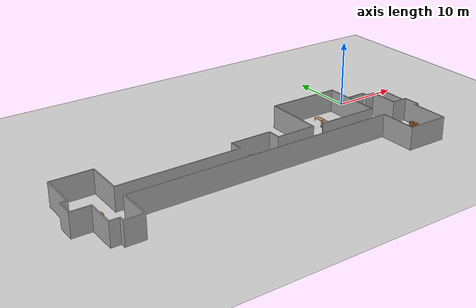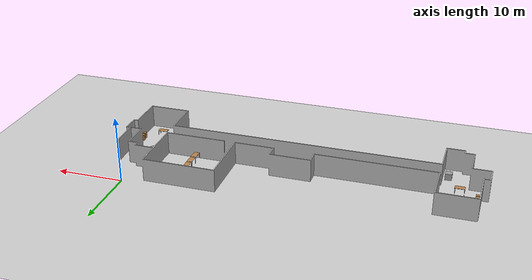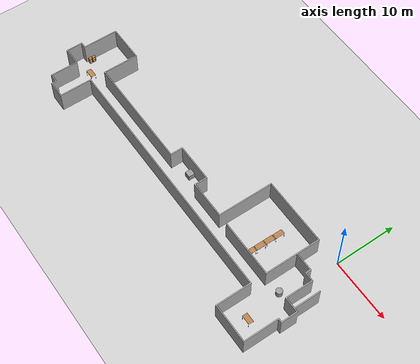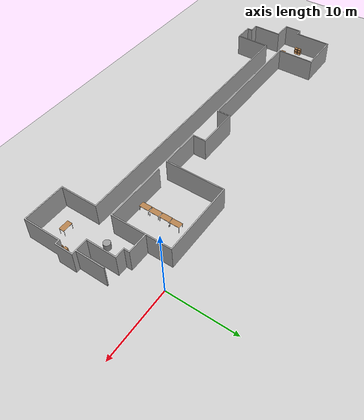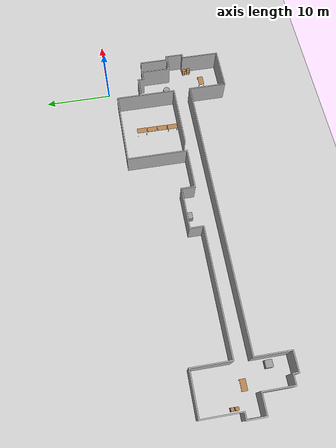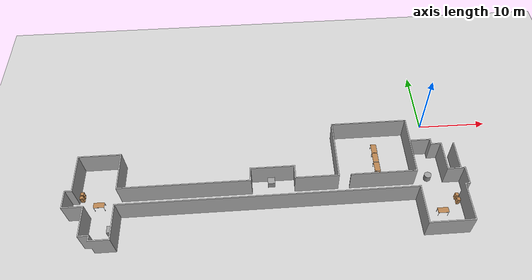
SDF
<sdf version="1.7">
 <world name="default">
  <light name="sun" type="directional">
   <pose>0 0 10 0 -0 0</pose>
   <diffuse>0.8 0.8 0.8 1</diffuse>
   <specular>0.2 0.2 0.2 1</specular>
   <attenuation>
    <range>1000</range>
    <constant>0.9</constant>
    <linear>0.01</linear>
    <quadratic>0.001</quadratic>
   </attenuation>
   <direction>-0.5 0.1 -0.9</direction>
   <spot><inner_angle>0</inner_angle><outer_angle>0</outer_angle><falloff>0</falloff></spot>
  </light>
  <model name="ground_plane">
   <pose>-10 0 0 0 -0 0</pose>
   <static>1</static>
   <link name="link">
    <collision name="collision">
     <geometry><plane><normal>0 0 1</normal><size>100 100</size></plane></geometry>
     <surface>
      <contact><collide_bitmask>65535</collide_bitmask></contact>
      <friction><ode><mu>100</mu><mu2>50</mu2></ode></friction>
     </surface>
    </collision>
    <visual name="visual">
     <cast_shadows>0</cast_shadows>
     <geometry><plane><normal>0 0 1</normal><size>100 100</size></plane></geometry>
     <material>
      <script><uri>file://media/materials/scripts/gazebo.material</uri><name>Gazebo/Grey</name></script>
     </material>
    </visual>
   </link>
  </model>
  <gravity>0 0 -9.8</gravity>
  <magnetic_field>6e-06 2.3e-05 -4.2e-05</magnetic_field>
  <atmosphere type="adiabatic"/>
  <physics type="ode">
   <max_step_size>0.001</max_step_size>
   <real_time_factor>1</real_time_factor>
   <real_time_update_rate>1000</real_time_update_rate>
  </physics>
  <scene><ambient>0.4 0.4 0.4 1</ambient><background>0.7 0.7 0.7 1</background><shadows>1</shadows></scene>
  <spherical_coordinates>
   <surface_model>EARTH_WGS84</surface_model>
   <latitude_deg>0</latitude_deg>
   <longitude_deg>0</longitude_deg>
   <elevation>0</elevation>
   <heading_deg>0</heading_deg>
  </spherical_coordinates>
  <model name="abcd">
   <static>1</static>
   <link name="link_utama">
    <collision name="collision">
     <geometry><mesh><uri>model://labc_1door/meshes/LABC_2Door.dae</uri><scale>1 1 1</scale></mesh></geometry>
    </collision>
    <visual name="visual">
     <geometry><mesh><uri>model://labc_1door/meshes/LABC_2Door.dae</uri><scale>1 1 1</scale></mesh></geometry>
    </visual>
   </link>
  </model>
  <model name="table">
   <static>1</static>
   <link name="link">
    <collision name="surface">
     <pose>0 0 1 0 -0 0</pose>
     <geometry><box><size>1.5 0.8 0.03</size></box></geometry>
     <surface><friction><ode><mu>0.6</mu><mu2>0.6</mu2></ode></friction></surface>
    </collision>
    <visual name="visual1">
     <pose>0 0 1 0 -0 0</pose>
     <geometry><box><size>1.5 0.8 0.03</size></box></geometry>
     <material>
      <script><uri>file://media/materials/scripts/gazebo.material</uri><name>Gazebo/Wood</name></script>
     </material>
    </visual>
    <collision name="front_left_leg">
     <pose>0.68 0.38 0.5 0 -0 0</pose>
     <geometry><cylinder><radius>0.02</radius><length>1</length></cylinder></geometry>
    </collision>
    <visual name="front_left_leg">
     <pose>0.68 0.38 0.5 0 -0 0</pose>
     <geometry><cylinder><radius>0.02</radius><length>1</length></cylinder></geometry>
     <material>
      <script><uri>file://media/materials/scripts/gazebo.material</uri><name>Gazebo/Grey</name></script>
     </material>
    </visual>
    <collision name="front_right_leg">
     <pose>0.68 -0.38 0.5 0 -0 0</pose>
     <geometry><cylinder><radius>0.02</radius><length>1</length></cylinder></geometry>
    </collision>
    <visual name="front_right_leg">
     <pose>0.68 -0.38 0.5 0 -0 0</pose>
     <geometry><cylinder><radius>0.02</radius><length>1</length></cylinder></geometry>
     <material>
      <script><uri>file://media/materials/scripts/gazebo.material</uri><name>Gazebo/Grey</name></script>
     </material>
    </visual>
    <collision name="back_right_leg">
     <pose>-0.68 -0.38 0.5 0 -0 0</pose>
     <geometry><cylinder><radius>0.02</radius><length>1</length></cylinder></geometry>
    </collision>
    <visual name="back_right_leg">
     <pose>-0.68 -0.38 0.5 0 -0 0</pose>
     <geometry><cylinder><radius>0.02</radius><length>1</length></cylinder></geometry>
     <material>
      <script><uri>file://media/materials/scripts/gazebo.material</uri><name>Gazebo/Grey</name></script>
     </material>
    </visual>
    <collision name="back_left_leg">
     <pose>-0.68 0.38 0.5 0 -0 0</pose>
     <geometry><cylinder><radius>0.02</radius><length>1</length></cylinder></geometry>
    </collision>
    <visual name="back_left_leg">
     <pose>-0.68 0.38 0.5 0 -0 0</pose>
     <geometry><cylinder><radius>0.02</radius><length>1</length></cylinder></geometry>
     <material>
      <script><uri>file://media/materials/scripts/gazebo.material</uri><name>Gazebo/Grey</name></script>
     </material>
    </visual>
   </link>
   <pose>-47.0916 -11.0579 0 0 -0 0</pose>
  </model>
  <model name="cabinet">
   <static>1</static>
   <link name="cabinet_bottom_plate">
    <inertial>
     <pose>0 0 -1 0 -0 0</pose>
     <inertia><ixx>2.05</ixx><ixy>0</ixy><ixz>0</ixz><iyy>2.05</iyy><iyz>0</iyz><izz>2.05</izz></inertia>
     <mass>25</mass>
    </inertial>
    <collision name="cabinet_bottom_plate_geom">
     <pose>0 0 0.01 0 -0 0</pose>
     <geometry><box><size>0.45 0.45 0.02</size></box></geometry>
    </collision>
    <visual name="cabinet_bottom_plate_geom_visual">
     <pose>0 0 0.01 0 -0 0</pose>
     <geometry><box><size>0.45 0.45 0.02</size></box></geometry>
     <material>
      <script><uri>file://media/materials/scripts/gazebo.material</uri><name>Gazebo/Wood</name></script>
     </material>
    </visual>
    <collision name="cabinet_bottom_plate_geom_cabinet_back_plate">
     <pose>0.235 0 0.51 0 -0 0</pose>
     <geometry><box><size>0.02 0.45 1.02</size></box></geometry>
    </collision>
    <visual name="cabinet_bottom_plate_geom_cabinet_back_plate_visual">
     <pose>0.235 0 0.51 0 -0 0</pose>
     <geometry><box><size>0.02 0.45 1.02</size></box></geometry>
     <material>
      <script><uri>file://media/materials/scripts/gazebo.material</uri><name>Gazebo/Wood</name></script>
     </material>
    </visual>
    <collision name="cabinet_bottom_plate_geom_cabinet_left_plate">
     <pose>0 0.235 0.51 0 -0 0</pose>
     <geometry><box><size>0.45 0.02 1.02</size></box></geometry>
    </collision>
    <visual name="cabinet_bottom_plate_geom_cabinet_left_plate_visual">
     <pose>0 0.235 0.51 0 -0 0</pose>
     <geometry><box><size>0.45 0.02 1.02</size></box></geometry>
     <material>
      <script><uri>file://media/materials/scripts/gazebo.material</uri><name>Gazebo/Wood</name></script>
     </material>
    </visual>
    <collision name="cabinet_bottom_plate_geom_cabinet_middle_plate">
     <pose>0 0 0.51 0 -0 0</pose>
     <geometry><box><size>0.45 0.45 0.02</size></box></geometry>
    </collision>
    <visual name="cabinet_bottom_plate_geom_cabinet_middle_plate_visual">
     <pose>0 0 0.51 0 -0 0</pose>
     <geometry><box><size>0.45 0.45 0.02</size></box></geometry>
     <material>
      <script><uri>file://media/materials/scripts/gazebo.material</uri><name>Gazebo/Wood</name></script>
     </material>
    </visual>
    <collision name="cabinet_bottom_plate_geom_cabinet_right_plate">
     <pose>0 -0.235 0.51 0 -0 0</pose>
     <geometry><box><size>0.45 0.02 1.02</size></box></geometry>
    </collision>
    <visual name="cabinet_bottom_plate_geom_cabinet_right_plate_visual">
     <pose>0 -0.235 0.51 0 -0 0</pose>
     <geometry><box><size>0.45 0.02 1.02</size></box></geometry>
     <material>
      <script><uri>file://media/materials/scripts/gazebo.material</uri><name>Gazebo/Wood</name></script>
     </material>
    </visual>
    <collision name="cabinet_bottom_plate_geom_cabinet_top_plate">
     <pose>0 0 1.01 0 -0 0</pose>
     <geometry><box><size>0.45 0.45 0.02</size></box></geometry>
    </collision>
    <visual name="cabinet_bottom_plate_geom_cabinet_top_plate_visual">
     <pose>0 0 1.01 0 -0 0</pose>
     <geometry><box><size>0.45 0.45 0.02</size></box></geometry>
     <material>
      <script><uri>file://media/materials/scripts/gazebo.material</uri><name>Gazebo/Wood</name></script>
     </material>
    </visual>
   </link>
   <pose>-49.6608 -9.63098 0 0 -0 -3.14159</pose>
  </model>
  <model name="cabinet_0">
   <static>1</static>
   <link name="cabinet_bottom_plate">
    <inertial>
     <pose>0 0 -1 0 -0 0</pose>
     <inertia><ixx>2.05</ixx><ixy>0</ixy><ixz>0</ixz><iyy>2.05</iyy><iyz>0</iyz><izz>2.05</izz></inertia>
     <mass>25</mass>
    </inertial>
    <collision name="cabinet_bottom_plate_geom">
     <pose>0 0 0.01 0 -0 0</pose>
     <geometry><box><size>0.45 0.45 0.02</size></box></geometry>
    </collision>
    <visual name="cabinet_bottom_plate_geom_visual">
     <pose>0 0 0.01 0 -0 0</pose>
     <geometry><box><size>0.45 0.45 0.02</size></box></geometry>
     <material>
      <script><uri>file://media/materials/scripts/gazebo.material</uri><name>Gazebo/Wood</name></script>
     </material>
    </visual>
    <collision name="cabinet_bottom_plate_geom_cabinet_back_plate">
     <pose>0.235 0 0.51 0 -0 0</pose>
     <geometry><box><size>0.02 0.45 1.02</size></box></geometry>
    </collision>
    <visual name="cabinet_bottom_plate_geom_cabinet_back_plate_visual">
     <pose>0.235 0 0.51 0 -0 0</pose>
     <geometry><box><size>0.02 0.45 1.02</size></box></geometry>
     <material>
      <script><uri>file://media/materials/scripts/gazebo.material</uri><name>Gazebo/Wood</name></script>
     </material>
    </visual>
    <collision name="cabinet_bottom_plate_geom_cabinet_left_plate">
     <pose>0 0.235 0.51 0 -0 0</pose>
     <geometry><box><size>0.45 0.02 1.02</size></box></geometry>
    </collision>
    <visual name="cabinet_bottom_plate_geom_cabinet_left_plate_visual">
     <pose>0 0.235 0.51 0 -0 0</pose>
     <geometry><box><size>0.45 0.02 1.02</size></box></geometry>
     <material>
      <script><uri>file://media/materials/scripts/gazebo.material</uri><name>Gazebo/Wood</name></script>
     </material>
    </visual>
    <collision name="cabinet_bottom_plate_geom_cabinet_middle_plate">
     <pose>0 0 0.51 0 -0 0</pose>
     <geometry><box><size>0.45 0.45 0.02</size></box></geometry>
    </collision>
    <visual name="cabinet_bottom_plate_geom_cabinet_middle_plate_visual">
     <pose>0 0 0.51 0 -0 0</pose>
     <geometry><box><size>0.45 0.45 0.02</size></box></geometry>
     <material>
      <script><uri>file://media/materials/scripts/gazebo.material</uri><name>Gazebo/Wood</name></script>
     </material>
    </visual>
    <collision name="cabinet_bottom_plate_geom_cabinet_right_plate">
     <pose>0 -0.235 0.51 0 -0 0</pose>
     <geometry><box><size>0.45 0.02 1.02</size></box></geometry>
    </collision>
    <visual name="cabinet_bottom_plate_geom_cabinet_right_plate_visual">
     <pose>0 -0.235 0.51 0 -0 0</pose>
     <geometry><box><size>0.45 0.02 1.02</size></box></geometry>
     <material>
      <script><uri>file://media/materials/scripts/gazebo.material</uri><name>Gazebo/Wood</name></script>
     </material>
    </visual>
    <collision name="cabinet_bottom_plate_geom_cabinet_top_plate">
     <pose>0 0 1.01 0 -0 0</pose>
     <geometry><box><size>0.45 0.45 0.02</size></box></geometry>
    </collision>
    <visual name="cabinet_bottom_plate_geom_cabinet_top_plate_visual">
     <pose>0 0 1.01 0 -0 0</pose>
     <geometry><box><size>0.45 0.45 0.02</size></box></geometry>
     <material>
      <script><uri>file://media/materials/scripts/gazebo.material</uri><name>Gazebo/Wood</name></script>
     </material>
    </visual>
   </link>
   <pose>-49.6528 -9.05775 0 0 -0 3.14159</pose>
  </model>
  <model name="unit_box">
   <pose>-45.0856 -14.8959 0.499995 0 -1e-05 0</pose>
   <link name="link">
    <inertial>
     <mass>1</mass>
     <inertia>
      <ixx>0.166667</ixx>
      <ixy>0</ixy>
      <ixz>0</ixz>
      <iyy>0.166667</iyy>
      <iyz>0</iyz>
      <izz>0.166667</izz>
     </inertia>
    </inertial>
    <collision name="collision"><geometry><box><size>1 1 1</size></box></geometry></collision>
    <visual name="visual">
     <geometry><box><size>1 1 1</size></box></geometry>
     <material>
      <script><name>Gazebo/Grey</name><uri>file://media/materials/scripts/gazebo.material</uri></script>
     </material>
    </visual>
   </link>
  </model>
  <model name="unit_box_0">
   <pose>-23.2611 -8.70652 0.499995 -1e-05 -0 -0</pose>
   <link name="link">
    <inertial>
     <mass>1</mass>
     <inertia>
      <ixx>0.166667</ixx>
      <ixy>0</ixy>
      <ixz>0</ixz>
      <iyy>0.166667</iyy>
      <iyz>0</iyz>
      <izz>0.166667</izz>
     </inertia>
    </inertial>
    <collision name="collision"><geometry><box><size>1 1 1</size></box></geometry></collision>
    <visual name="visual">
     <geometry><box><size>1 1 1</size></box></geometry>
     <material>
      <script><name>Gazebo/Grey</name><uri>file://media/materials/scripts/gazebo.material</uri></script>
     </material>
    </visual>
   </link>
  </model>
  <model name="table_0">
   <static>1</static>
   <link name="link">
    <collision name="surface">
     <pose>0 0 1 0 -0 0</pose>
     <geometry><box><size>1.5 0.8 0.03</size></box></geometry>
     <surface><friction><ode><mu>0.6</mu><mu2>0.6</mu2></ode></friction></surface>
    </collision>
    <visual name="visual1">
     <pose>0 0 1 0 -0 0</pose>
     <geometry><box><size>1.5 0.8 0.03</size></box></geometry>
     <material>
      <script><uri>file://media/materials/scripts/gazebo.material</uri><name>Gazebo/Wood</name></script>
     </material>
    </visual>
    <collision name="front_left_leg">
     <pose>0.68 0.38 0.5 0 -0 0</pose>
     <geometry><cylinder><radius>0.02</radius><length>1</length></cylinder></geometry>
    </collision>
    <visual name="front_left_leg">
     <pose>0.68 0.38 0.5 0 -0 0</pose>
     <geometry><cylinder><radius>0.02</radius><length>1</length></cylinder></geometry>
     <material>
      <script><uri>file://media/materials/scripts/gazebo.material</uri><name>Gazebo/Grey</name></script>
     </material>
    </visual>
    <collision name="front_right_leg">
     <pose>0.68 -0.38 0.5 0 -0 0</pose>
     <geometry><cylinder><radius>0.02</radius><length>1</length></cylinder></geometry>
    </collision>
    <visual name="front_right_leg">
     <pose>0.68 -0.38 0.5 0 -0 0</pose>
     <geometry><cylinder><radius>0.02</radius><length>1</length></cylinder></geometry>
     <material>
      <script><uri>file://media/materials/scripts/gazebo.material</uri><name>Gazebo/Grey</name></script>
     </material>
    </visual>
    <collision name="back_right_leg">
     <pose>-0.68 -0.38 0.5 0 -0 0</pose>
     <geometry><cylinder><radius>0.02</radius><length>1</length></cylinder></geometry>
    </collision>
    <visual name="back_right_leg">
     <pose>-0.68 -0.38 0.5 0 -0 0</pose>
     <geometry><cylinder><radius>0.02</radius><length>1</length></cylinder></geometry>
     <material>
      <script><uri>file://media/materials/scripts/gazebo.material</uri><name>Gazebo/Grey</name></script>
     </material>
    </visual>
    <collision name="back_left_leg">
     <pose>-0.68 0.38 0.5 0 -0 0</pose>
     <geometry><cylinder><radius>0.02</radius><length>1</length></cylinder></geometry>
    </collision>
    <visual name="back_left_leg">
     <pose>-0.68 0.38 0.5 0 -0 0</pose>
     <geometry><cylinder><radius>0.02</radius><length>1</length></cylinder></geometry>
     <material>
      <script><uri>file://media/materials/scripts/gazebo.material</uri><name>Gazebo/Grey</name></script>
     </material>
    </visual>
   </link>
   <pose>-7.90031 -4.22788 0 0 0 -1.5708</pose>
  </model>
  <model name="table_1">
   <static>1</static>
   <link name="link">
    <collision name="surface">
     <pose>0 0 1 0 -0 0</pose>
     <geometry><box><size>1.5 0.8 0.03</size></box></geometry>
     <surface><friction><ode><mu>0.6</mu><mu2>0.6</mu2></ode></friction></surface>
    </collision>
    <visual name="visual1">
     <pose>0 0 1 0 -0 0</pose>
     <geometry><box><size>1.5 0.8 0.03</size></box></geometry>
     <material>
      <script><uri>file://media/materials/scripts/gazebo.material</uri><name>Gazebo/Wood</name></script>
     </material>
    </visual>
    <collision name="front_left_leg">
     <pose>0.68 0.38 0.5 0 -0 0</pose>
     <geometry><cylinder><radius>0.02</radius><length>1</length></cylinder></geometry>
    </collision>
    <visual name="front_left_leg">
     <pose>0.68 0.38 0.5 0 -0 0</pose>
     <geometry><cylinder><radius>0.02</radius><length>1</length></cylinder></geometry>
     <material>
      <script><uri>file://media/materials/scripts/gazebo.material</uri><name>Gazebo/Grey</name></script>
     </material>
    </visual>
    <collision name="front_right_leg">
     <pose>0.68 -0.38 0.5 0 -0 0</pose>
     <geometry><cylinder><radius>0.02</radius><length>1</length></cylinder></geometry>
    </collision>
    <visual name="front_right_leg">
     <pose>0.68 -0.38 0.5 0 -0 0</pose>
     <geometry><cylinder><radius>0.02</radius><length>1</length></cylinder></geometry>
     <material>
      <script><uri>file://media/materials/scripts/gazebo.material</uri><name>Gazebo/Grey</name></script>
     </material>
    </visual>
    <collision name="back_right_leg">
     <pose>-0.68 -0.38 0.5 0 -0 0</pose>
     <geometry><cylinder><radius>0.02</radius><length>1</length></cylinder></geometry>
    </collision>
    <visual name="back_right_leg">
     <pose>-0.68 -0.38 0.5 0 -0 0</pose>
     <geometry><cylinder><radius>0.02</radius><length>1</length></cylinder></geometry>
     <material>
      <script><uri>file://media/materials/scripts/gazebo.material</uri><name>Gazebo/Grey</name></script>
     </material>
    </visual>
    <collision name="back_left_leg">
     <pose>-0.68 0.38 0.5 0 -0 0</pose>
     <geometry><cylinder><radius>0.02</radius><length>1</length></cylinder></geometry>
    </collision>
    <visual name="back_left_leg">
     <pose>-0.68 0.38 0.5 0 -0 0</pose>
     <geometry><cylinder><radius>0.02</radius><length>1</length></cylinder></geometry>
     <material>
      <script><uri>file://media/materials/scripts/gazebo.material</uri><name>Gazebo/Grey</name></script>
     </material>
    </visual>
   </link>
   <pose>-7.93047 -5.80985 0 0 0 -1.5708</pose>
  </model>
  <model name="table_2">
   <static>1</static>
   <link name="link">
    <collision name="surface">
     <pose>0 0 1 0 -0 0</pose>
     <geometry><box><size>1.5 0.8 0.03</size></box></geometry>
     <surface><friction><ode><mu>0.6</mu><mu2>0.6</mu2></ode></friction></surface>
    </collision>
    <visual name="visual1">
     <pose>0 0 1 0 -0 0</pose>
     <geometry><box><size>1.5 0.8 0.03</size></box></geometry>
     <material>
      <script><uri>file://media/materials/scripts/gazebo.material</uri><name>Gazebo/Wood</name></script>
     </material>
    </visual>
    <collision name="front_left_leg">
     <pose>0.68 0.38 0.5 0 -0 0</pose>
     <geometry><cylinder><radius>0.02</radius><length>1</length></cylinder></geometry>
    </collision>
    <visual name="front_left_leg">
     <pose>0.68 0.38 0.5 0 -0 0</pose>
     <geometry><cylinder><radius>0.02</radius><length>1</length></cylinder></geometry>
     <material>
      <script><uri>file://media/materials/scripts/gazebo.material</uri><name>Gazebo/Grey</name></script>
     </material>
    </visual>
    <collision name="front_right_leg">
     <pose>0.68 -0.38 0.5 0 -0 0</pose>
     <geometry><cylinder><radius>0.02</radius><length>1</length></cylinder></geometry>
    </collision>
    <visual name="front_right_leg">
     <pose>0.68 -0.38 0.5 0 -0 0</pose>
     <geometry><cylinder><radius>0.02</radius><length>1</length></cylinder></geometry>
     <material>
      <script><uri>file://media/materials/scripts/gazebo.material</uri><name>Gazebo/Grey</name></script>
     </material>
    </visual>
    <collision name="back_right_leg">
     <pose>-0.68 -0.38 0.5 0 -0 0</pose>
     <geometry><cylinder><radius>0.02</radius><length>1</length></cylinder></geometry>
    </collision>
    <visual name="back_right_leg">
     <pose>-0.68 -0.38 0.5 0 -0 0</pose>
     <geometry><cylinder><radius>0.02</radius><length>1</length></cylinder></geometry>
     <material>
      <script><uri>file://media/materials/scripts/gazebo.material</uri><name>Gazebo/Grey</name></script>
     </material>
    </visual>
    <collision name="back_left_leg">
     <pose>-0.68 0.38 0.5 0 -0 0</pose>
     <geometry><cylinder><radius>0.02</radius><length>1</length></cylinder></geometry>
    </collision>
    <visual name="back_left_leg">
     <pose>-0.68 0.38 0.5 0 -0 0</pose>
     <geometry><cylinder><radius>0.02</radius><length>1</length></cylinder></geometry>
     <material>
      <script><uri>file://media/materials/scripts/gazebo.material</uri><name>Gazebo/Grey</name></script>
     </material>
    </visual>
   </link>
   <pose>-7.92531 -7.39821 0 0 0 -1.5708</pose>
  </model>
  <model name="table_3">
   <static>1</static>
   <link name="link">
    <collision name="surface">
     <pose>0 0 1 0 -0 0</pose>
     <geometry><box><size>1.5 0.8 0.03</size></box></geometry>
     <surface><friction><ode><mu>0.6</mu><mu2>0.6</mu2></ode></friction></surface>
    </collision>
    <visual name="visual1">
     <pose>0 0 1 0 -0 0</pose>
     <geometry><box><size>1.5 0.8 0.03</size></box></geometry>
     <material>
      <script><uri>file://media/materials/scripts/gazebo.material</uri><name>Gazebo/Wood</name></script>
     </material>
    </visual>
    <collision name="front_left_leg">
     <pose>0.68 0.38 0.5 0 -0 0</pose>
     <geometry><cylinder><radius>0.02</radius><length>1</length></cylinder></geometry>
    </collision>
    <visual name="front_left_leg">
     <pose>0.68 0.38 0.5 0 -0 0</pose>
     <geometry><cylinder><radius>0.02</radius><length>1</length></cylinder></geometry>
     <material>
      <script><uri>file://media/materials/scripts/gazebo.material</uri><name>Gazebo/Grey</name></script>
     </material>
    </visual>
    <collision name="front_right_leg">
     <pose>0.68 -0.38 0.5 0 -0 0</pose>
     <geometry><cylinder><radius>0.02</radius><length>1</length></cylinder></geometry>
    </collision>
    <visual name="front_right_leg">
     <pose>0.68 -0.38 0.5 0 -0 0</pose>
     <geometry><cylinder><radius>0.02</radius><length>1</length></cylinder></geometry>
     <material>
      <script><uri>file://media/materials/scripts/gazebo.material</uri><name>Gazebo/Grey</name></script>
     </material>
    </visual>
    <collision name="back_right_leg">
     <pose>-0.68 -0.38 0.5 0 -0 0</pose>
     <geometry><cylinder><radius>0.02</radius><length>1</length></cylinder></geometry>
    </collision>
    <visual name="back_right_leg">
     <pose>-0.68 -0.38 0.5 0 -0 0</pose>
     <geometry><cylinder><radius>0.02</radius><length>1</length></cylinder></geometry>
     <material>
      <script><uri>file://media/materials/scripts/gazebo.material</uri><name>Gazebo/Grey</name></script>
     </material>
    </visual>
    <collision name="back_left_leg">
     <pose>-0.68 0.38 0.5 0 -0 0</pose>
     <geometry><cylinder><radius>0.02</radius><length>1</length></cylinder></geometry>
    </collision>
    <visual name="back_left_leg">
     <pose>-0.68 0.38 0.5 0 -0 0</pose>
     <geometry><cylinder><radius>0.02</radius><length>1</length></cylinder></geometry>
     <material>
      <script><uri>file://media/materials/scripts/gazebo.material</uri><name>Gazebo/Grey</name></script>
     </material>
    </visual>
   </link>
   <pose>-7.94561 -9.01076 0 0 0 -1.5708</pose>
  </model>
  <model name="cabinet_1">
   <static>1</static>
   <link name="cabinet_bottom_plate">
    <inertial>
     <pose>0 0 -1 0 -0 0</pose>
     <inertia><ixx>2.05</ixx><ixy>0</ixy><ixz>0</ixz><iyy>2.05</iyy><iyz>0</iyz><izz>2.05</izz></inertia>
     <mass>25</mass>
    </inertial>
    <collision name="cabinet_bottom_plate_geom">
     <pose>0 0 0.01 0 -0 0</pose>
     <geometry><box><size>0.45 0.45 0.02</size></box></geometry>
    </collision>
    <visual name="cabinet_bottom_plate_geom_visual">
     <pose>0 0 0.01 0 -0 0</pose>
     <geometry><box><size>0.45 0.45 0.02</size></box></geometry>
     <material>
      <script><uri>file://media/materials/scripts/gazebo.material</uri><name>Gazebo/Wood</name></script>
     </material>
    </visual>
    <collision name="cabinet_bottom_plate_geom_cabinet_back_plate">
     <pose>0.235 0 0.51 0 -0 0</pose>
     <geometry><box><size>0.02 0.45 1.02</size></box></geometry>
    </collision>
    <visual name="cabinet_bottom_plate_geom_cabinet_back_plate_visual">
     <pose>0.235 0 0.51 0 -0 0</pose>
     <geometry><box><size>0.02 0.45 1.02</size></box></geometry>
     <material>
      <script><uri>file://media/materials/scripts/gazebo.material</uri><name>Gazebo/Wood</name></script>
     </material>
    </visual>
    <collision name="cabinet_bottom_plate_geom_cabinet_left_plate">
     <pose>0 0.235 0.51 0 -0 0</pose>
     <geometry><box><size>0.45 0.02 1.02</size></box></geometry>
    </collision>
    <visual name="cabinet_bottom_plate_geom_cabinet_left_plate_visual">
     <pose>0 0.235 0.51 0 -0 0</pose>
     <geometry><box><size>0.45 0.02 1.02</size></box></geometry>
     <material>
      <script><uri>file://media/materials/scripts/gazebo.material</uri><name>Gazebo/Wood</name></script>
     </material>
    </visual>
    <collision name="cabinet_bottom_plate_geom_cabinet_middle_plate">
     <pose>0 0 0.51 0 -0 0</pose>
     <geometry><box><size>0.45 0.45 0.02</size></box></geometry>
    </collision>
    <visual name="cabinet_bottom_plate_geom_cabinet_middle_plate_visual">
     <pose>0 0 0.51 0 -0 0</pose>
     <geometry><box><size>0.45 0.45 0.02</size></box></geometry>
     <material>
      <script><uri>file://media/materials/scripts/gazebo.material</uri><name>Gazebo/Wood</name></script>
     </material>
    </visual>
    <collision name="cabinet_bottom_plate_geom_cabinet_right_plate">
     <pose>0 -0.235 0.51 0 -0 0</pose>
     <geometry><box><size>0.45 0.02 1.02</size></box></geometry>
    </collision>
    <visual name="cabinet_bottom_plate_geom_cabinet_right_plate_visual">
     <pose>0 -0.235 0.51 0 -0 0</pose>
     <geometry><box><size>0.45 0.02 1.02</size></box></geometry>
     <material>
      <script><uri>file://media/materials/scripts/gazebo.material</uri><name>Gazebo/Wood</name></script>
     </material>
    </visual>
    <collision name="cabinet_bottom_plate_geom_cabinet_top_plate">
     <pose>0 0 1.01 0 -0 0</pose>
     <geometry><box><size>0.45 0.45 0.02</size></box></geometry>
    </collision>
    <visual name="cabinet_bottom_plate_geom_cabinet_top_plate_visual">
     <pose>0 0 1.01 0 -0 0</pose>
     <geometry><box><size>0.45 0.45 0.02</size></box></geometry>
     <material>
      <script><uri>file://media/materials/scripts/gazebo.material</uri><name>Gazebo/Wood</name></script>
     </material>
    </visual>
   </link>
   <pose>2.42677 -12.8233 0 0 -0 0</pose>
  </model>
  <model name="cabinet_2">
   <static>1</static>
   <link name="cabinet_bottom_plate">
    <inertial>
     <pose>0 0 -1 0 -0 0</pose>
     <inertia><ixx>2.05</ixx><ixy>0</ixy><ixz>0</ixz><iyy>2.05</iyy><iyz>0</iyz><izz>2.05</izz></inertia>
     <mass>25</mass>
    </inertial>
    <collision name="cabinet_bottom_plate_geom">
     <pose>0 0 0.01 0 -0 0</pose>
     <geometry><box><size>0.45 0.45 0.02</size></box></geometry>
    </collision>
    <visual name="cabinet_bottom_plate_geom_visual">
     <pose>0 0 0.01 0 -0 0</pose>
     <geometry><box><size>0.45 0.45 0.02</size></box></geometry>
     <material>
      <script><uri>file://media/materials/scripts/gazebo.material</uri><name>Gazebo/Wood</name></script>
     </material>
    </visual>
    <collision name="cabinet_bottom_plate_geom_cabinet_back_plate">
     <pose>0.235 0 0.51 0 -0 0</pose>
     <geometry><box><size>0.02 0.45 1.02</size></box></geometry>
    </collision>
    <visual name="cabinet_bottom_plate_geom_cabinet_back_plate_visual">
     <pose>0.235 0 0.51 0 -0 0</pose>
     <geometry><box><size>0.02 0.45 1.02</size></box></geometry>
     <material>
      <script><uri>file://media/materials/scripts/gazebo.material</uri><name>Gazebo/Wood</name></script>
     </material>
    </visual>
    <collision name="cabinet_bottom_plate_geom_cabinet_left_plate">
     <pose>0 0.235 0.51 0 -0 0</pose>
     <geometry><box><size>0.45 0.02 1.02</size></box></geometry>
    </collision>
    <visual name="cabinet_bottom_plate_geom_cabinet_left_plate_visual">
     <pose>0 0.235 0.51 0 -0 0</pose>
     <geometry><box><size>0.45 0.02 1.02</size></box></geometry>
     <material>
      <script><uri>file://media/materials/scripts/gazebo.material</uri><name>Gazebo/Wood</name></script>
     </material>
    </visual>
    <collision name="cabinet_bottom_plate_geom_cabinet_middle_plate">
     <pose>0 0 0.51 0 -0 0</pose>
     <geometry><box><size>0.45 0.45 0.02</size></box></geometry>
    </collision>
    <visual name="cabinet_bottom_plate_geom_cabinet_middle_plate_visual">
     <pose>0 0 0.51 0 -0 0</pose>
     <geometry><box><size>0.45 0.45 0.02</size></box></geometry>
     <material>
      <script><uri>file://media/materials/scripts/gazebo.material</uri><name>Gazebo/Wood</name></script>
     </material>
    </visual>
    <collision name="cabinet_bottom_plate_geom_cabinet_right_plate">
     <pose>0 -0.235 0.51 0 -0 0</pose>
     <geometry><box><size>0.45 0.02 1.02</size></box></geometry>
    </collision>
    <visual name="cabinet_bottom_plate_geom_cabinet_right_plate_visual">
     <pose>0 -0.235 0.51 0 -0 0</pose>
     <geometry><box><size>0.45 0.02 1.02</size></box></geometry>
     <material>
      <script><uri>file://media/materials/scripts/gazebo.material</uri><name>Gazebo/Wood</name></script>
     </material>
    </visual>
    <collision name="cabinet_bottom_plate_geom_cabinet_top_plate">
     <pose>0 0 1.01 0 -0 0</pose>
     <geometry><box><size>0.45 0.45 0.02</size></box></geometry>
    </collision>
    <visual name="cabinet_bottom_plate_geom_cabinet_top_plate_visual">
     <pose>0 0 1.01 0 -0 0</pose>
     <geometry><box><size>0.45 0.45 0.02</size></box></geometry>
     <material>
      <script><uri>file://media/materials/scripts/gazebo.material</uri><name>Gazebo/Wood</name></script>
     </material>
    </visual>
   </link>
   <pose>2.48862 -13.5543 0 0 -0 0</pose>
  </model>
  <model name="table_4">
   <static>1</static>
   <link name="link">
    <collision name="surface">
     <pose>0 0 1 0 -0 0</pose>
     <geometry><box><size>1.5 0.8 0.03</size></box></geometry>
     <surface><friction><ode><mu>0.6</mu><mu2>0.6</mu2></ode></friction></surface>
    </collision>
    <visual name="visual1">
     <pose>0 0 1 0 -0 0</pose>
     <geometry><box><size>1.5 0.8 0.03</size></box></geometry>
     <material>
      <script><uri>file://media/materials/scripts/gazebo.material</uri><name>Gazebo/Wood</name></script>
     </material>
    </visual>
    <collision name="front_left_leg">
     <pose>0.68 0.38 0.5 0 -0 0</pose>
     <geometry><cylinder><radius>0.02</radius><length>1</length></cylinder></geometry>
    </collision>
    <visual name="front_left_leg">
     <pose>0.68 0.38 0.5 0 -0 0</pose>
     <geometry><cylinder><radius>0.02</radius><length>1</length></cylinder></geometry>
     <material>
      <script><uri>file://media/materials/scripts/gazebo.material</uri><name>Gazebo/Grey</name></script>
     </material>
    </visual>
    <collision name="front_right_leg">
     <pose>0.68 -0.38 0.5 0 -0 0</pose>
     <geometry><cylinder><radius>0.02</radius><length>1</length></cylinder></geometry>
    </collision>
    <visual name="front_right_leg">
     <pose>0.68 -0.38 0.5 0 -0 0</pose>
     <geometry><cylinder><radius>0.02</radius><length>1</length></cylinder></geometry>
     <material>
      <script><uri>file://media/materials/scripts/gazebo.material</uri><name>Gazebo/Grey</name></script>
     </material>
    </visual>
    <collision name="back_right_leg">
     <pose>-0.68 -0.38 0.5 0 -0 0</pose>
     <geometry><cylinder><radius>0.02</radius><length>1</length></cylinder></geometry>
    </collision>
    <visual name="back_right_leg">
     <pose>-0.68 -0.38 0.5 0 -0 0</pose>
     <geometry><cylinder><radius>0.02</radius><length>1</length></cylinder></geometry>
     <material>
      <script><uri>file://media/materials/scripts/gazebo.material</uri><name>Gazebo/Grey</name></script>
     </material>
    </visual>
    <collision name="back_left_leg">
     <pose>-0.68 0.38 0.5 0 -0 0</pose>
     <geometry><cylinder><radius>0.02</radius><length>1</length></cylinder></geometry>
    </collision>
    <visual name="back_left_leg">
     <pose>-0.68 0.38 0.5 0 -0 0</pose>
     <geometry><cylinder><radius>0.02</radius><length>1</length></cylinder></geometry>
     <material>
      <script><uri>file://media/materials/scripts/gazebo.material</uri><name>Gazebo/Grey</name></script>
     </material>
    </visual>
   </link>
   <pose>-0.043324 -15.1633 0 0 -0 0</pose>
  </model>
  <model name="unit_cylinder">
   <pose>-0.924908 -9.33197 0.499993 -3e-06 -4e-06 -0</pose>
   <link name="link">
    <inertial>
     <mass>1</mass>
     <inertia><ixx>0.145833</ixx><ixy>0</ixy><ixz>0</ixz><iyy>0.145833</iyy><iyz>0</iyz><izz>0.125</izz></inertia>
    </inertial>
    <collision name="collision">
     <geometry><cylinder><radius>0.5</radius><length>1</length></cylinder></geometry>
    </collision>
    <visual name="visual">
     <geometry><cylinder><radius>0.5</radius><length>1</length></cylinder></geometry>
     <material>
      <script><name>Gazebo/Grey</name><uri>file://media/materials/scripts/gazebo.material</uri></script>
     </material>
    </visual>
   </link>
  </model>
 </world>
</sdf>
